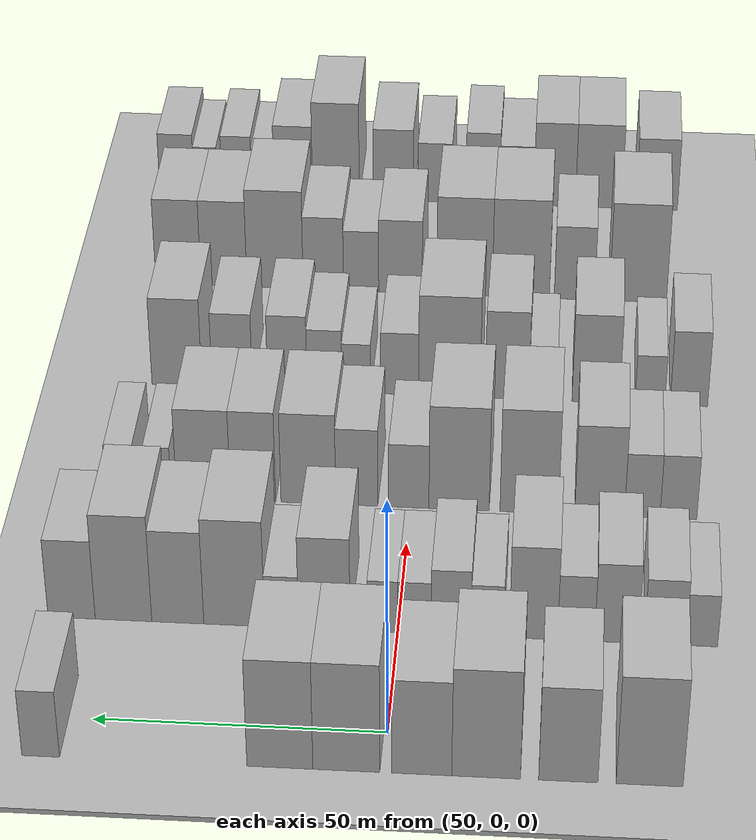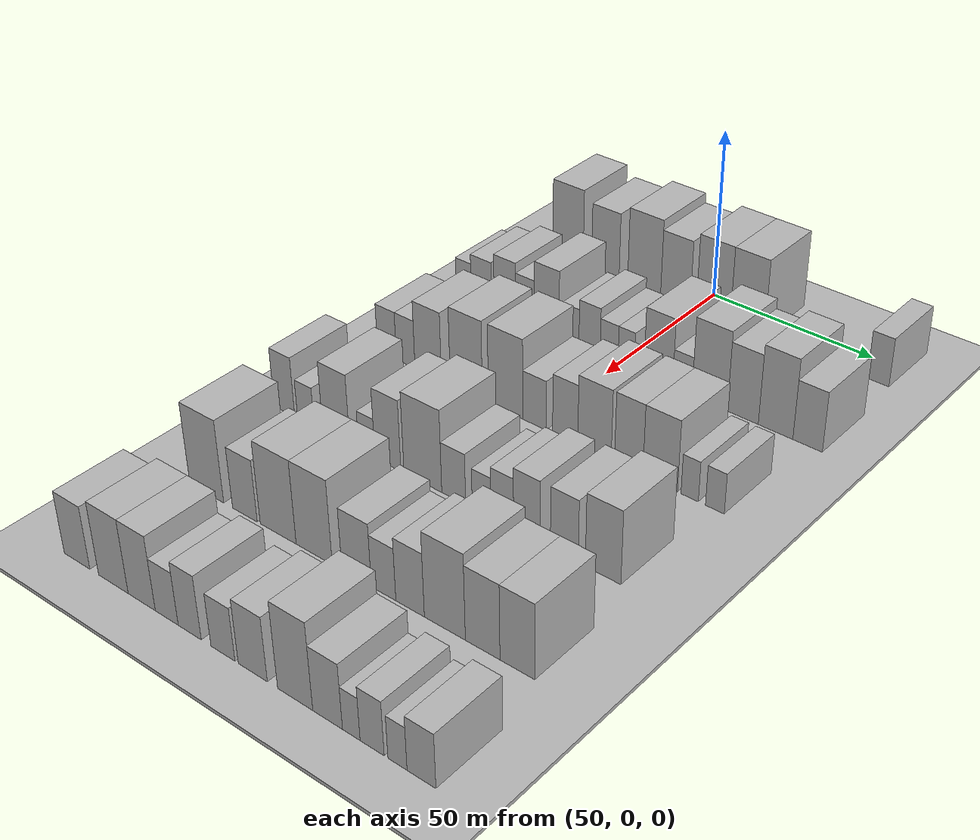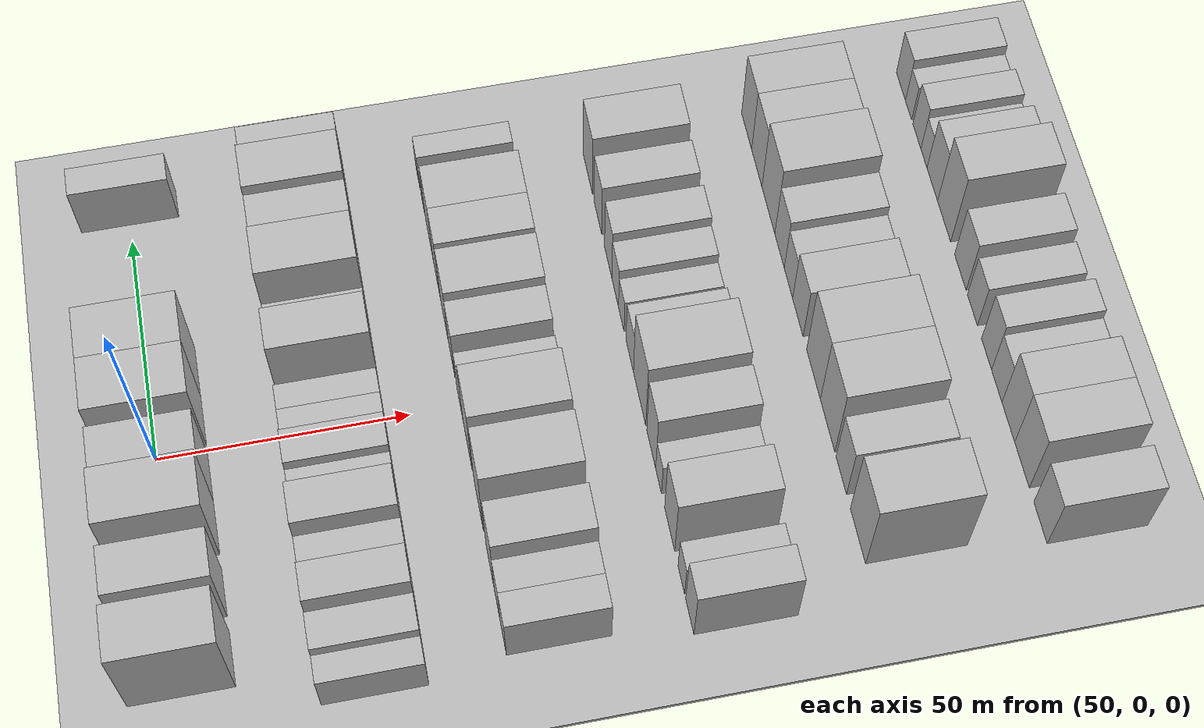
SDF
<sdf version="1.6">
 <world name="default">
  <include><name>ground_plane_1</name><uri>model://HANNAS_ground_plane</uri></include>
  <include>
   <name>ground_plane_2</name>
   <uri>model://HANNAS_ground_plane</uri>
   <pose>100 0 0  0 0 0</pose>
  </include>
  <model name="building_56">
   <static>1</static>
   <pose>50.0000 -43.8185 0 0.000000 0.000000 0.000000</pose>
   <link name="link">
    <pose>0 0 12.00 0 0 0</pose>
    <collision name="collision"><geometry><box><size>20.0000 10.9798 24.0000</size></box></geometry></collision>
    <visual name="visual">
     <cast_shadows>0</cast_shadows>
     <geometry><box><size>20.0000 10.9798 24.0000</size></box></geometry>
     <material>
      <script>
       <uri>model://HANNAS_wall/materials/scripts</uri>
       <uri>model://HANNAS_wall/materials/textures</uri>
       <name>vrc/HANNAS_wall</name>
      </script>
     </material>
    </visual>
   </link>
  </model>
  <model name="building_57">
   <static>1</static>
   <pose>50.0000 -30.4582 0 0.000000 0.000000 0.000000</pose>
   <link name="link">
    <pose>0 0 10.50 0 0 0</pose>
    <collision name="collision"><geometry><box><size>20.0000 9.7407 21.0000</size></box></geometry></collision>
    <visual name="visual">
     <cast_shadows>0</cast_shadows>
     <geometry><box><size>20.0000 9.7407 21.0000</size></box></geometry>
     <material>
      <script>
       <uri>model://HANNAS_wall/materials/scripts</uri>
       <uri>model://HANNAS_wall/materials/textures</uri>
       <name>vrc/HANNAS_wall</name>
      </script>
     </material>
    </visual>
   </link>
  </model>
  <model name="building_58">
   <static>1</static>
   <pose>50.0000 -16.9229 0 0.000000 0.000000 0.000000</pose>
   <link name="link">
    <pose>0 0 12.00 0 0 0</pose>
    <collision name="collision"><geometry><box><size>20.0000 11.3301 24.0000</size></box></geometry></collision>
    <visual name="visual">
     <cast_shadows>0</cast_shadows>
     <geometry><box><size>20.0000 11.3301 24.0000</size></box></geometry>
     <material>
      <script>
       <uri>model://HANNAS_wall/materials/scripts</uri>
       <uri>model://HANNAS_wall/materials/textures</uri>
       <name>vrc/HANNAS_wall</name>
      </script>
     </material>
    </visual>
   </link>
  </model>
  <model name="building_59">
   <static>1</static>
   <pose>50.0000 -6.3030 0 0.000000 0.000000 0.000000</pose>
   <link name="link">
    <pose>0 0 10.50 0 0 0</pose>
    <collision name="collision"><geometry><box><size>20.0000 9.9096 21.0000</size></box></geometry></collision>
    <visual name="visual">
     <cast_shadows>0</cast_shadows>
     <geometry><box><size>20.0000 9.9096 21.0000</size></box></geometry>
     <material>
      <script>
       <uri>model://HANNAS_wall/materials/scripts</uri>
       <uri>model://HANNAS_wall/materials/textures</uri>
       <name>vrc/HANNAS_wall</name>
      </script>
     </material>
    </visual>
   </link>
  </model>
  <model name="building_60">
   <static>1</static>
   <pose>50.0000 6.1983 0 0.000000 0.000000 0.000000</pose>
   <link name="link">
    <pose>0 0 12.00 0 0 0</pose>
    <collision name="collision"><geometry><box><size>20.0000 11.0931 24.0000</size></box></geometry></collision>
    <visual name="visual">
     <cast_shadows>0</cast_shadows>
     <geometry><box><size>20.0000 11.0931 24.0000</size></box></geometry>
     <material>
      <script>
       <uri>model://HANNAS_wall/materials/scripts</uri>
       <uri>model://HANNAS_wall/materials/textures</uri>
       <name>vrc/HANNAS_wall</name>
      </script>
     </material>
    </visual>
   </link>
  </model>
  <model name="building_61">
   <static>1</static>
   <pose>50.0000 17.2244 0 0.000000 0.000000 0.000000</pose>
   <link name="link">
    <pose>0 0 12.00 0 0 0</pose>
    <collision name="collision"><geometry><box><size>20.0000 10.9591 24.0000</size></box></geometry></collision>
    <visual name="visual">
     <cast_shadows>0</cast_shadows>
     <geometry><box><size>20.0000 10.9591 24.0000</size></box></geometry>
     <material>
      <script>
       <uri>model://HANNAS_wall/materials/scripts</uri>
       <uri>model://HANNAS_wall/materials/textures</uri>
       <name>vrc/HANNAS_wall</name>
      </script>
     </material>
    </visual>
   </link>
  </model>
  <model name="building_62">
   <static>1</static>
   <pose>50.0000 57.1753 0 0.000000 0.000000 0.000000</pose>
   <link name="link">
    <pose>0 0 7.50 0 0 0</pose>
    <collision name="collision"><geometry><box><size>20.0000 6.3143 15.0000</size></box></geometry></collision>
    <visual name="visual">
     <cast_shadows>0</cast_shadows>
     <geometry><box><size>20.0000 6.3143 15.0000</size></box></geometry>
     <material>
      <script>
       <uri>model://HANNAS_wall/materials/scripts</uri>
       <uri>model://HANNAS_wall/materials/textures</uri>
       <name>vrc/HANNAS_wall</name>
      </script>
     </material>
    </visual>
   </link>
  </model>
  <model name="building_176">
   <static>1</static>
   <pose>85.0000 -53.0691 0 0.000000 0.000000 0.000000</pose>
   <link name="link">
    <pose>0 0 6.00 0 0 0</pose>
    <collision name="collision"><geometry><box><size>20.0000 5.4670 12.0000</size></box></geometry></collision>
    <visual name="visual">
     <cast_shadows>0</cast_shadows>
     <geometry><box><size>20.0000 5.4670 12.0000</size></box></geometry>
     <material>
      <script>
       <uri>model://HANNAS_wall/materials/scripts</uri>
       <uri>model://HANNAS_wall/materials/textures</uri>
       <name>vrc/HANNAS_wall</name>
      </script>
     </material>
    </visual>
   </link>
  </model>
  <model name="building_177">
   <static>1</static>
   <pose>85.0000 -46.6960 0 0.000000 0.000000 0.000000</pose>
   <link name="link">
    <pose>0 0 7.50 0 0 0</pose>
    <collision name="collision"><geometry><box><size>20.0000 7.2791 15.0000</size></box></geometry></collision>
    <visual name="visual">
     <cast_shadows>0</cast_shadows>
     <geometry><box><size>20.0000 7.2791 15.0000</size></box></geometry>
     <material>
      <script>
       <uri>model://HANNAS_wall/materials/scripts</uri>
       <uri>model://HANNAS_wall/materials/textures</uri>
       <name>vrc/HANNAS_wall</name>
      </script>
     </material>
    </visual>
   </link>
  </model>
  <model name="building_178">
   <static>1</static>
   <pose>85.0000 -38.2350 0 0.000000 0.000000 0.000000</pose>
   <link name="link">
    <pose>0 0 9.00 0 0 0</pose>
    <collision name="collision"><geometry><box><size>20.0000 7.6429 18.0000</size></box></geometry></collision>
    <visual name="visual">
     <cast_shadows>0</cast_shadows>
     <geometry><box><size>20.0000 7.6429 18.0000</size></box></geometry>
     <material>
      <script>
       <uri>model://HANNAS_wall/materials/scripts</uri>
       <uri>model://HANNAS_wall/materials/textures</uri>
       <name>vrc/HANNAS_wall</name>
      </script>
     </material>
    </visual>
   </link>
  </model>
  <model name="building_179">
   <static>1</static>
   <pose>85.0000 -31.1884 0 0.000000 0.000000 0.000000</pose>
   <link name="link">
    <pose>0 0 7.50 0 0 0</pose>
    <collision name="collision"><geometry><box><size>20.0000 6.4503 15.0000</size></box></geometry></collision>
    <visual name="visual">
     <cast_shadows>0</cast_shadows>
     <geometry><box><size>20.0000 6.4503 15.0000</size></box></geometry>
     <material>
      <script>
       <uri>model://HANNAS_wall/materials/scripts</uri>
       <uri>model://HANNAS_wall/materials/textures</uri>
       <name>vrc/HANNAS_wall</name>
      </script>
     </material>
    </visual>
   </link>
  </model>
  <model name="building_180">
   <static>1</static>
   <pose>85.0000 -23.7538 0 0.000000 0.000000 0.000000</pose>
   <link name="link">
    <pose>0 0 10.50 0 0 0</pose>
    <collision name="collision"><geometry><box><size>20.0000 8.4188 21.0000</size></box></geometry></collision>
    <visual name="visual">
     <cast_shadows>0</cast_shadows>
     <geometry><box><size>20.0000 8.4188 21.0000</size></box></geometry>
     <material>
      <script>
       <uri>model://HANNAS_wall/materials/scripts</uri>
       <uri>model://HANNAS_wall/materials/textures</uri>
       <name>vrc/HANNAS_wall</name>
      </script>
     </material>
    </visual>
   </link>
  </model>
  <model name="building_181">
   <static>1</static>
   <pose>85.0000 -15.6903 0 0.000000 0.000000 0.000000</pose>
   <link name="link">
    <pose>0 0 6.00 0 0 0</pose>
    <collision name="collision"><geometry><box><size>20.0000 5.7083 12.0000</size></box></geometry></collision>
    <visual name="visual">
     <cast_shadows>0</cast_shadows>
     <geometry><box><size>20.0000 5.7083 12.0000</size></box></geometry>
     <material>
      <script>
       <uri>model://HANNAS_wall/materials/scripts</uri>
       <uri>model://HANNAS_wall/materials/textures</uri>
       <name>vrc/HANNAS_wall</name>
      </script>
     </material>
    </visual>
   </link>
  </model>
  <model name="building_182">
   <static>1</static>
   <pose>85.0000 -9.3246 0 0.000000 0.000000 0.000000</pose>
   <link name="link">
    <pose>0 0 7.50 0 0 0</pose>
    <collision name="collision"><geometry><box><size>20.0000 7.0229 15.0000</size></box></geometry></collision>
    <visual name="visual">
     <cast_shadows>0</cast_shadows>
     <geometry><box><size>20.0000 7.0229 15.0000</size></box></geometry>
     <material>
      <script>
       <uri>model://HANNAS_wall/materials/scripts</uri>
       <uri>model://HANNAS_wall/materials/textures</uri>
       <name>vrc/HANNAS_wall</name>
      </script>
     </material>
    </visual>
   </link>
  </model>
  <model name="building_183">
   <static>1</static>
   <pose>85.0000 -2.8880 0 0.000000 0.000000 0.000000</pose>
   <link name="link">
    <pose>0 0 6.00 0 0 0</pose>
    <collision name="collision"><geometry><box><size>20.0000 5.8504 12.0000</size></box></geometry></collision>
    <visual name="visual">
     <cast_shadows>0</cast_shadows>
     <geometry><box><size>20.0000 5.8504 12.0000</size></box></geometry>
     <material>
      <script>
       <uri>model://HANNAS_wall/materials/scripts</uri>
       <uri>model://HANNAS_wall/materials/textures</uri>
       <name>vrc/HANNAS_wall</name>
      </script>
     </material>
    </visual>
   </link>
  </model>
  <model name="building_184">
   <static>1</static>
   <pose>85.0000 2.7037 0 0.000000 0.000000 0.000000</pose>
   <link name="link">
    <pose>0 0 6.00 0 0 0</pose>
    <collision name="collision"><geometry><box><size>20.0000 5.3329 12.0000</size></box></geometry></collision>
    <visual name="visual">
     <cast_shadows>0</cast_shadows>
     <geometry><box><size>20.0000 5.3329 12.0000</size></box></geometry>
     <material>
      <script>
       <uri>model://HANNAS_wall/materials/scripts</uri>
       <uri>model://HANNAS_wall/materials/textures</uri>
       <name>vrc/HANNAS_wall</name>
      </script>
     </material>
    </visual>
   </link>
  </model>
  <model name="building_185">
   <static>1</static>
   <pose>85.0000 12.9105 0 0.000000 0.000000 0.000000</pose>
   <link name="link">
    <pose>0 0 10.50 0 0 0</pose>
    <collision name="collision"><geometry><box><size>20.0000 9.0807 21.0000</size></box></geometry></collision>
    <visual name="visual">
     <cast_shadows>0</cast_shadows>
     <geometry><box><size>20.0000 9.0807 21.0000</size></box></geometry>
     <material>
      <script>
       <uri>model://HANNAS_wall/materials/scripts</uri>
       <uri>model://HANNAS_wall/materials/textures</uri>
       <name>vrc/HANNAS_wall</name>
      </script>
     </material>
    </visual>
   </link>
  </model>
  <model name="building_186">
   <static>1</static>
   <pose>85.0000 20.4463 0 0.000000 0.000000 0.000000</pose>
   <link name="link">
    <pose>0 0 6.00 0 0 0</pose>
    <collision name="collision"><geometry><box><size>20.0000 5.9910 12.0000</size></box></geometry></collision>
    <visual name="visual">
     <cast_shadows>0</cast_shadows>
     <geometry><box><size>20.0000 5.9910 12.0000</size></box></geometry>
     <material>
      <script>
       <uri>model://HANNAS_wall/materials/scripts</uri>
       <uri>model://HANNAS_wall/materials/textures</uri>
       <name>vrc/HANNAS_wall</name>
      </script>
     </material>
    </visual>
   </link>
  </model>
  <model name="building_187">
   <static>1</static>
   <pose>85.0000 28.7972 0 0.000000 0.000000 0.000000</pose>
   <link name="link">
    <pose>0 0 12.00 0 0 0</pose>
    <collision name="collision"><geometry><box><size>20.0000 10.7109 24.0000</size></box></geometry></collision>
    <visual name="visual">
     <cast_shadows>0</cast_shadows>
     <geometry><box><size>20.0000 10.7109 24.0000</size></box></geometry>
     <material>
      <script>
       <uri>model://HANNAS_wall/materials/scripts</uri>
       <uri>model://HANNAS_wall/materials/textures</uri>
       <name>vrc/HANNAS_wall</name>
      </script>
     </material>
    </visual>
   </link>
  </model>
  <model name="building_188">
   <static>1</static>
   <pose>85.0000 38.7574 0 0.000000 0.000000 0.000000</pose>
   <link name="link">
    <pose>0 0 10.50 0 0 0</pose>
    <collision name="collision"><geometry><box><size>20.0000 9.2094 21.0000</size></box></geometry></collision>
    <visual name="visual">
     <cast_shadows>0</cast_shadows>
     <geometry><box><size>20.0000 9.2094 21.0000</size></box></geometry>
     <material>
      <script>
       <uri>model://HANNAS_wall/materials/scripts</uri>
       <uri>model://HANNAS_wall/materials/textures</uri>
       <name>vrc/HANNAS_wall</name>
      </script>
     </material>
    </visual>
   </link>
  </model>
  <model name="building_189">
   <static>1</static>
   <pose>85.0000 48.3788 0 0.000000 0.000000 0.000000</pose>
   <link name="link">
    <pose>0 0 12.00 0 0 0</pose>
    <collision name="collision"><geometry><box><size>20.0000 10.0334 24.0000</size></box></geometry></collision>
    <visual name="visual">
     <cast_shadows>0</cast_shadows>
     <geometry><box><size>20.0000 10.0334 24.0000</size></box></geometry>
     <material>
      <script>
       <uri>model://HANNAS_wall/materials/scripts</uri>
       <uri>model://HANNAS_wall/materials/textures</uri>
       <name>vrc/HANNAS_wall</name>
      </script>
     </material>
    </visual>
   </link>
  </model>
  <model name="building_190">
   <static>1</static>
   <pose>85.0000 57.5876 0 0.000000 0.000000 0.000000</pose>
   <link name="link">
    <pose>0 0 9.00 0 0 0</pose>
    <collision name="collision"><geometry><box><size>20.0000 8.3841 18.0000</size></box></geometry></collision>
    <visual name="visual">
     <cast_shadows>0</cast_shadows>
     <geometry><box><size>20.0000 8.3841 18.0000</size></box></geometry>
     <material>
      <script>
       <uri>model://HANNAS_wall/materials/scripts</uri>
       <uri>model://HANNAS_wall/materials/textures</uri>
       <name>vrc/HANNAS_wall</name>
      </script>
     </material>
    </visual>
   </link>
  </model>
  <model name="building_310">
   <static>1</static>
   <pose>120.0000 -49.4529 0 0.000000 0.000000 0.000000</pose>
   <link name="link">
    <pose>0 0 7.50 0 0 0</pose>
    <collision name="collision"><geometry><box><size>20.0000 6.7456 15.0000</size></box></geometry></collision>
    <visual name="visual">
     <cast_shadows>0</cast_shadows>
     <geometry><box><size>20.0000 6.7456 15.0000</size></box></geometry>
     <material>
      <script>
       <uri>model://HANNAS_wall/materials/scripts</uri>
       <uri>model://HANNAS_wall/materials/textures</uri>
       <name>vrc/HANNAS_wall</name>
      </script>
     </material>
    </visual>
   </link>
  </model>
  <model name="building_311">
   <static>1</static>
   <pose>120.0000 -42.8187 0 0.000000 0.000000 0.000000</pose>
   <link name="link">
    <pose>0 0 7.50 0 0 0</pose>
    <collision name="collision"><geometry><box><size>20.0000 6.5228 15.0000</size></box></geometry></collision>
    <visual name="visual">
     <cast_shadows>0</cast_shadows>
     <geometry><box><size>20.0000 6.5228 15.0000</size></box></geometry>
     <material>
      <script>
       <uri>model://HANNAS_wall/materials/scripts</uri>
       <uri>model://HANNAS_wall/materials/textures</uri>
       <name>vrc/HANNAS_wall</name>
      </script>
     </material>
    </visual>
   </link>
  </model>
  <model name="building_312">
   <static>1</static>
   <pose>120.0000 -34.9695 0 0.000000 0.000000 0.000000</pose>
   <link name="link">
    <pose>0 0 10.50 0 0 0</pose>
    <collision name="collision"><geometry><box><size>20.0000 9.1755 21.0000</size></box></geometry></collision>
    <visual name="visual">
     <cast_shadows>0</cast_shadows>
     <geometry><box><size>20.0000 9.1755 21.0000</size></box></geometry>
     <material>
      <script>
       <uri>model://HANNAS_wall/materials/scripts</uri>
       <uri>model://HANNAS_wall/materials/textures</uri>
       <name>vrc/HANNAS_wall</name>
      </script>
     </material>
    </visual>
   </link>
  </model>
  <model name="building_313">
   <static>1</static>
   <pose>120.0000 -21.9897 0 0.000000 0.000000 0.000000</pose>
   <link name="link">
    <pose>0 0 12.00 0 0 0</pose>
    <collision name="collision"><geometry><box><size>20.0000 10.7841 24.0000</size></box></geometry></collision>
    <visual name="visual">
     <cast_shadows>0</cast_shadows>
     <geometry><box><size>20.0000 10.7841 24.0000</size></box></geometry>
     <material>
      <script>
       <uri>model://HANNAS_wall/materials/scripts</uri>
       <uri>model://HANNAS_wall/materials/textures</uri>
       <name>vrc/HANNAS_wall</name>
      </script>
     </material>
    </visual>
   </link>
  </model>
  <model name="building_314">
   <static>1</static>
   <pose>120.0000 -9.0251 0 0.000000 0.000000 0.000000</pose>
   <link name="link">
    <pose>0 0 12.00 0 0 0</pose>
    <collision name="collision"><geometry><box><size>20.0000 11.1451 24.0000</size></box></geometry></collision>
    <visual name="visual">
     <cast_shadows>0</cast_shadows>
     <geometry><box><size>20.0000 11.1451 24.0000</size></box></geometry>
     <material>
      <script>
       <uri>model://HANNAS_wall/materials/scripts</uri>
       <uri>model://HANNAS_wall/materials/textures</uri>
       <name>vrc/HANNAS_wall</name>
      </script>
     </material>
    </visual>
   </link>
  </model>
  <model name="building_315">
   <static>1</static>
   <pose>120.0000 0.2911 0 0.000000 0.000000 0.000000</pose>
   <link name="link">
    <pose>0 0 7.50 0 0 0</pose>
    <collision name="collision"><geometry><box><size>20.0000 7.4872 15.0000</size></box></geometry></collision>
    <visual name="visual">
     <cast_shadows>0</cast_shadows>
     <geometry><box><size>20.0000 7.4872 15.0000</size></box></geometry>
     <material>
      <script>
       <uri>model://HANNAS_wall/materials/scripts</uri>
       <uri>model://HANNAS_wall/materials/textures</uri>
       <name>vrc/HANNAS_wall</name>
      </script>
     </material>
    </visual>
   </link>
  </model>
  <model name="building_316">
   <static>1</static>
   <pose>120.0000 9.9441 0 0.000000 0.000000 0.000000</pose>
   <link name="link">
    <pose>0 0 9.00 0 0 0</pose>
    <collision name="collision"><geometry><box><size>20.0000 7.8189 18.0000</size></box></geometry></collision>
    <visual name="visual">
     <cast_shadows>0</cast_shadows>
     <geometry><box><size>20.0000 7.8189 18.0000</size></box></geometry>
     <material>
      <script>
       <uri>model://HANNAS_wall/materials/scripts</uri>
       <uri>model://HANNAS_wall/materials/textures</uri>
       <name>vrc/HANNAS_wall</name>
      </script>
     </material>
    </visual>
   </link>
  </model>
  <model name="building_317">
   <static>1</static>
   <pose>120.0000 18.9361 0 0.000000 0.000000 0.000000</pose>
   <link name="link">
    <pose>0 0 10.50 0 0 0</pose>
    <collision name="collision"><geometry><box><size>20.0000 10.1650 21.0000</size></box></geometry></collision>
    <visual name="visual">
     <cast_shadows>0</cast_shadows>
     <geometry><box><size>20.0000 10.1650 21.0000</size></box></geometry>
     <material>
      <script>
       <uri>model://HANNAS_wall/materials/scripts</uri>
       <uri>model://HANNAS_wall/materials/textures</uri>
       <name>vrc/HANNAS_wall</name>
      </script>
     </material>
    </visual>
   </link>
  </model>
  <model name="building_318">
   <static>1</static>
   <pose>120.0000 29.2321 0 0.000000 0.000000 0.000000</pose>
   <link name="link">
    <pose>0 0 10.50 0 0 0</pose>
    <collision name="collision"><geometry><box><size>20.0000 8.4270 21.0000</size></box></geometry></collision>
    <visual name="visual">
     <cast_shadows>0</cast_shadows>
     <geometry><box><size>20.0000 8.4270 21.0000</size></box></geometry>
     <material>
      <script>
       <uri>model://HANNAS_wall/materials/scripts</uri>
       <uri>model://HANNAS_wall/materials/textures</uri>
       <name>vrc/HANNAS_wall</name>
      </script>
     </material>
    </visual>
   </link>
  </model>
  <model name="building_319">
   <static>1</static>
   <pose>120.0000 38.4697 0 0.000000 0.000000 0.000000</pose>
   <link name="link">
    <pose>0 0 10.50 0 0 0</pose>
    <collision name="collision"><geometry><box><size>20.0000 10.0481 21.0000</size></box></geometry></collision>
    <visual name="visual">
     <cast_shadows>0</cast_shadows>
     <geometry><box><size>20.0000 10.0481 21.0000</size></box></geometry>
     <material>
      <script>
       <uri>model://HANNAS_wall/materials/scripts</uri>
       <uri>model://HANNAS_wall/materials/textures</uri>
       <name>vrc/HANNAS_wall</name>
      </script>
     </material>
    </visual>
   </link>
  </model>
  <model name="building_320">
   <static>1</static>
   <pose>120.0000 46.9573 0 0.000000 0.000000 0.000000</pose>
   <link name="link">
    <pose>0 0 6.00 0 0 0</pose>
    <collision name="collision"><geometry><box><size>20.0000 4.9272 12.0000</size></box></geometry></collision>
    <visual name="visual">
     <cast_shadows>0</cast_shadows>
     <geometry><box><size>20.0000 4.9272 12.0000</size></box></geometry>
     <material>
      <script>
       <uri>model://HANNAS_wall/materials/scripts</uri>
       <uri>model://HANNAS_wall/materials/textures</uri>
       <name>vrc/HANNAS_wall</name>
      </script>
     </material>
    </visual>
   </link>
  </model>
  <model name="building_321">
   <static>1</static>
   <pose>120.0000 54.0471 0 0.000000 0.000000 0.000000</pose>
   <link name="link">
    <pose>0 0 6.00 0 0 0</pose>
    <collision name="collision"><geometry><box><size>20.0000 5.2524 12.0000</size></box></geometry></collision>
    <visual name="visual">
     <cast_shadows>0</cast_shadows>
     <geometry><box><size>20.0000 5.2524 12.0000</size></box></geometry>
     <material>
      <script>
       <uri>model://HANNAS_wall/materials/scripts</uri>
       <uri>model://HANNAS_wall/materials/textures</uri>
       <name>vrc/HANNAS_wall</name>
      </script>
     </material>
    </visual>
   </link>
  </model>
  <model name="building_436">
   <static>1</static>
   <pose>155.0000 -51.9201 0 0.000000 0.000000 0.000000</pose>
   <link name="link">
    <pose>0 0 9.00 0 0 0</pose>
    <collision name="collision"><geometry><box><size>20.0000 7.2445 18.0000</size></box></geometry></collision>
    <visual name="visual">
     <cast_shadows>0</cast_shadows>
     <geometry><box><size>20.0000 7.2445 18.0000</size></box></geometry>
     <material>
      <script>
       <uri>model://HANNAS_wall/materials/scripts</uri>
       <uri>model://HANNAS_wall/materials/textures</uri>
       <name>vrc/HANNAS_wall</name>
      </script>
     </material>
    </visual>
   </link>
  </model>
  <model name="building_437">
   <static>1</static>
   <pose>155.0000 -44.3984 0 0.000000 0.000000 0.000000</pose>
   <link name="link">
    <pose>0 0 6.00 0 0 0</pose>
    <collision name="collision"><geometry><box><size>20.0000 5.7989 12.0000</size></box></geometry></collision>
    <visual name="visual">
     <cast_shadows>0</cast_shadows>
     <geometry><box><size>20.0000 5.7989 12.0000</size></box></geometry>
     <material>
      <script>
       <uri>model://HANNAS_wall/materials/scripts</uri>
       <uri>model://HANNAS_wall/materials/textures</uri>
       <name>vrc/HANNAS_wall</name>
      </script>
     </material>
    </visual>
   </link>
  </model>
  <model name="building_438">
   <static>1</static>
   <pose>155.0000 -33.8927 0 0.000000 0.000000 0.000000</pose>
   <link name="link">
    <pose>0 0 10.50 0 0 0</pose>
    <collision name="collision"><geometry><box><size>20.0000 9.2124 21.0000</size></box></geometry></collision>
    <visual name="visual">
     <cast_shadows>0</cast_shadows>
     <geometry><box><size>20.0000 9.2124 21.0000</size></box></geometry>
     <material>
      <script>
       <uri>model://HANNAS_wall/materials/scripts</uri>
       <uri>model://HANNAS_wall/materials/textures</uri>
       <name>vrc/HANNAS_wall</name>
      </script>
     </material>
    </visual>
   </link>
  </model>
  <model name="building_439">
   <static>1</static>
   <pose>155.0000 -23.5919 0 0.000000 0.000000 0.000000</pose>
   <link name="link">
    <pose>0 0 6.00 0 0 0</pose>
    <collision name="collision"><geometry><box><size>20.0000 5.3892 12.0000</size></box></geometry></collision>
    <visual name="visual">
     <cast_shadows>0</cast_shadows>
     <geometry><box><size>20.0000 5.3892 12.0000</size></box></geometry>
     <material>
      <script>
       <uri>model://HANNAS_wall/materials/scripts</uri>
       <uri>model://HANNAS_wall/materials/textures</uri>
       <name>vrc/HANNAS_wall</name>
      </script>
     </material>
    </visual>
   </link>
  </model>
  <model name="building_440">
   <static>1</static>
   <pose>155.0000 -16.6614 0 0.000000 0.000000 0.000000</pose>
   <link name="link">
    <pose>0 0 10.50 0 0 0</pose>
    <collision name="collision"><geometry><box><size>20.0000 8.4717 21.0000</size></box></geometry></collision>
    <visual name="visual">
     <cast_shadows>0</cast_shadows>
     <geometry><box><size>20.0000 8.4717 21.0000</size></box></geometry>
     <material>
      <script>
       <uri>model://HANNAS_wall/materials/scripts</uri>
       <uri>model://HANNAS_wall/materials/textures</uri>
       <name>vrc/HANNAS_wall</name>
      </script>
     </material>
    </visual>
   </link>
  </model>
  <model name="building_441">
   <static>1</static>
   <pose>155.0000 -5.4288 0 0.000000 0.000000 0.000000</pose>
   <link name="link">
    <pose>0 0 12.00 0 0 0</pose>
    <collision name="collision"><geometry><box><size>20.0000 11.9936 24.0000</size></box></geometry></collision>
    <visual name="visual">
     <cast_shadows>0</cast_shadows>
     <geometry><box><size>20.0000 11.9936 24.0000</size></box></geometry>
     <material>
      <script>
       <uri>model://HANNAS_wall/materials/scripts</uri>
       <uri>model://HANNAS_wall/materials/textures</uri>
       <name>vrc/HANNAS_wall</name>
      </script>
     </material>
    </visual>
   </link>
  </model>
  <model name="building_442">
   <static>1</static>
   <pose>155.0000 4.2767 0 0.000000 0.000000 0.000000</pose>
   <link name="link">
    <pose>0 0 7.50 0 0 0</pose>
    <collision name="collision"><geometry><box><size>20.0000 7.4174 15.0000</size></box></geometry></collision>
    <visual name="visual">
     <cast_shadows>0</cast_shadows>
     <geometry><box><size>20.0000 7.4174 15.0000</size></box></geometry>
     <material>
      <script>
       <uri>model://HANNAS_wall/materials/scripts</uri>
       <uri>model://HANNAS_wall/materials/textures</uri>
       <name>vrc/HANNAS_wall</name>
      </script>
     </material>
    </visual>
   </link>
  </model>
  <model name="building_443">
   <static>1</static>
   <pose>155.0000 12.7968 0 0.000000 0.000000 0.000000</pose>
   <link name="link">
    <pose>0 0 6.00 0 0 0</pose>
    <collision name="collision"><geometry><box><size>20.0000 5.6229 12.0000</size></box></geometry></collision>
    <visual name="visual">
     <cast_shadows>0</cast_shadows>
     <geometry><box><size>20.0000 5.6229 12.0000</size></box></geometry>
     <material>
      <script>
       <uri>model://HANNAS_wall/materials/scripts</uri>
       <uri>model://HANNAS_wall/materials/textures</uri>
       <name>vrc/HANNAS_wall</name>
      </script>
     </material>
    </visual>
   </link>
  </model>
  <model name="building_444">
   <static>1</static>
   <pose>155.0000 19.0161 0 0.000000 0.000000 0.000000</pose>
   <link name="link">
    <pose>0 0 7.50 0 0 0</pose>
    <collision name="collision"><geometry><box><size>20.0000 6.8156 15.0000</size></box></geometry></collision>
    <visual name="visual">
     <cast_shadows>0</cast_shadows>
     <geometry><box><size>20.0000 6.8156 15.0000</size></box></geometry>
     <material>
      <script>
       <uri>model://HANNAS_wall/materials/scripts</uri>
       <uri>model://HANNAS_wall/materials/textures</uri>
       <name>vrc/HANNAS_wall</name>
      </script>
     </material>
    </visual>
   </link>
  </model>
  <model name="building_445">
   <static>1</static>
   <pose>155.0000 26.2734 0 0.000000 0.000000 0.000000</pose>
   <link name="link">
    <pose>0 0 9.00 0 0 0</pose>
    <collision name="collision"><geometry><box><size>20.0000 7.6990 18.0000</size></box></geometry></collision>
    <visual name="visual">
     <cast_shadows>0</cast_shadows>
     <geometry><box><size>20.0000 7.6990 18.0000</size></box></geometry>
     <material>
      <script>
       <uri>model://HANNAS_wall/materials/scripts</uri>
       <uri>model://HANNAS_wall/materials/textures</uri>
       <name>vrc/HANNAS_wall</name>
      </script>
     </material>
    </visual>
   </link>
  </model>
  <model name="building_446">
   <static>1</static>
   <pose>155.0000 37.0886 0 0.000000 0.000000 0.000000</pose>
   <link name="link">
    <pose>0 0 9.00 0 0 0</pose>
    <collision name="collision"><geometry><box><size>20.0000 7.9316 18.0000</size></box></geometry></collision>
    <visual name="visual">
     <cast_shadows>0</cast_shadows>
     <geometry><box><size>20.0000 7.9316 18.0000</size></box></geometry>
     <material>
      <script>
       <uri>model://HANNAS_wall/materials/scripts</uri>
       <uri>model://HANNAS_wall/materials/textures</uri>
       <name>vrc/HANNAS_wall</name>
      </script>
     </material>
    </visual>
   </link>
  </model>
  <model name="building_447">
   <static>1</static>
   <pose>155.0000 47.9744 0 0.000000 0.000000 0.000000</pose>
   <link name="link">
    <pose>0 0 10.50 0 0 0</pose>
    <collision name="collision"><geometry><box><size>20.0000 9.8399 21.0000</size></box></geometry></collision>
    <visual name="visual">
     <cast_shadows>0</cast_shadows>
     <geometry><box><size>20.0000 9.8399 21.0000</size></box></geometry>
     <material>
      <script>
       <uri>model://HANNAS_wall/materials/scripts</uri>
       <uri>model://HANNAS_wall/materials/textures</uri>
       <name>vrc/HANNAS_wall</name>
      </script>
     </material>
    </visual>
   </link>
  </model>
  <model name="building_571">
   <static>1</static>
   <pose>190.0000 -42.1070 0 0.000000 0.000000 0.000000</pose>
   <link name="link">
    <pose>0 0 12.00 0 0 0</pose>
    <collision name="collision"><geometry><box><size>20.0000 11.6554 24.0000</size></box></geometry></collision>
    <visual name="visual">
     <cast_shadows>0</cast_shadows>
     <geometry><box><size>20.0000 11.6554 24.0000</size></box></geometry>
     <material>
      <script>
       <uri>model://HANNAS_wall/materials/scripts</uri>
       <uri>model://HANNAS_wall/materials/textures</uri>
       <name>vrc/HANNAS_wall</name>
      </script>
     </material>
    </visual>
   </link>
  </model>
  <model name="building_572">
   <static>1</static>
   <pose>190.0000 -29.1701 0 0.000000 0.000000 0.000000</pose>
   <link name="link">
    <pose>0 0 9.00 0 0 0</pose>
    <collision name="collision"><geometry><box><size>20.0000 8.2184 18.0000</size></box></geometry></collision>
    <visual name="visual">
     <cast_shadows>0</cast_shadows>
     <geometry><box><size>20.0000 8.2184 18.0000</size></box></geometry>
     <material>
      <script>
       <uri>model://HANNAS_wall/materials/scripts</uri>
       <uri>model://HANNAS_wall/materials/textures</uri>
       <name>vrc/HANNAS_wall</name>
      </script>
     </material>
    </visual>
   </link>
  </model>
  <model name="building_573">
   <static>1</static>
   <pose>190.0000 -18.2340 0 0.000000 0.000000 0.000000</pose>
   <link name="link">
    <pose>0 0 12.00 0 0 0</pose>
    <collision name="collision"><geometry><box><size>20.0000 11.6538 24.0000</size></box></geometry></collision>
    <visual name="visual">
     <cast_shadows>0</cast_shadows>
     <geometry><box><size>20.0000 11.6538 24.0000</size></box></geometry>
     <material>
      <script>
       <uri>model://HANNAS_wall/materials/scripts</uri>
       <uri>model://HANNAS_wall/materials/textures</uri>
       <name>vrc/HANNAS_wall</name>
      </script>
     </material>
    </visual>
   </link>
  </model>
  <model name="building_574">
   <static>1</static>
   <pose>190.0000 -6.7224 0 0.000000 0.000000 0.000000</pose>
   <link name="link">
    <pose>0 0 12.00 0 0 0</pose>
    <collision name="collision"><geometry><box><size>20.0000 11.3694 24.0000</size></box></geometry></collision>
    <visual name="visual">
     <cast_shadows>0</cast_shadows>
     <geometry><box><size>20.0000 11.3694 24.0000</size></box></geometry>
     <material>
      <script>
       <uri>model://HANNAS_wall/materials/scripts</uri>
       <uri>model://HANNAS_wall/materials/textures</uri>
       <name>vrc/HANNAS_wall</name>
      </script>
     </material>
    </visual>
   </link>
  </model>
  <model name="building_575">
   <static>1</static>
   <pose>190.0000 6.4315 0 0.000000 0.000000 0.000000</pose>
   <link name="link">
    <pose>0 0 9.00 0 0 0</pose>
    <collision name="collision"><geometry><box><size>20.0000 8.9382 18.0000</size></box></geometry></collision>
    <visual name="visual">
     <cast_shadows>0</cast_shadows>
     <geometry><box><size>20.0000 8.9382 18.0000</size></box></geometry>
     <material>
      <script>
       <uri>model://HANNAS_wall/materials/scripts</uri>
       <uri>model://HANNAS_wall/materials/textures</uri>
       <name>vrc/HANNAS_wall</name>
      </script>
     </material>
    </visual>
   </link>
  </model>
  <model name="building_576">
   <static>1</static>
   <pose>190.0000 14.5263 0 0.000000 0.000000 0.000000</pose>
   <link name="link">
    <pose>0 0 7.50 0 0 0</pose>
    <collision name="collision"><geometry><box><size>20.0000 7.2515 15.0000</size></box></geometry></collision>
    <visual name="visual">
     <cast_shadows>0</cast_shadows>
     <geometry><box><size>20.0000 7.2515 15.0000</size></box></geometry>
     <material>
      <script>
       <uri>model://HANNAS_wall/materials/scripts</uri>
       <uri>model://HANNAS_wall/materials/textures</uri>
       <name>vrc/HANNAS_wall</name>
      </script>
     </material>
    </visual>
   </link>
  </model>
  <model name="building_577">
   <static>1</static>
   <pose>190.0000 22.3029 0 0.000000 0.000000 0.000000</pose>
   <link name="link">
    <pose>0 0 9.00 0 0 0</pose>
    <collision name="collision"><geometry><box><size>20.0000 8.3016 18.0000</size></box></geometry></collision>
    <visual name="visual">
     <cast_shadows>0</cast_shadows>
     <geometry><box><size>20.0000 8.3016 18.0000</size></box></geometry>
     <material>
      <script>
       <uri>model://HANNAS_wall/materials/scripts</uri>
       <uri>model://HANNAS_wall/materials/textures</uri>
       <name>vrc/HANNAS_wall</name>
      </script>
     </material>
    </visual>
   </link>
  </model>
  <model name="building_578">
   <static>1</static>
   <pose>190.0000 32.2489 0 0.000000 0.000000 0.000000</pose>
   <link name="link">
    <pose>0 0 12.00 0 0 0</pose>
    <collision name="collision"><geometry><box><size>20.0000 11.5903 24.0000</size></box></geometry></collision>
    <visual name="visual">
     <cast_shadows>0</cast_shadows>
     <geometry><box><size>20.0000 11.5903 24.0000</size></box></geometry>
     <material>
      <script>
       <uri>model://HANNAS_wall/materials/scripts</uri>
       <uri>model://HANNAS_wall/materials/textures</uri>
       <name>vrc/HANNAS_wall</name>
      </script>
     </material>
    </visual>
   </link>
  </model>
  <model name="building_579">
   <static>1</static>
   <pose>190.0000 42.7977 0 0.000000 0.000000 0.000000</pose>
   <link name="link">
    <pose>0 0 10.50 0 0 0</pose>
    <collision name="collision"><geometry><box><size>20.0000 9.5073 21.0000</size></box></geometry></collision>
    <visual name="visual">
     <cast_shadows>0</cast_shadows>
     <geometry><box><size>20.0000 9.5073 21.0000</size></box></geometry>
     <material>
      <script>
       <uri>model://HANNAS_wall/materials/scripts</uri>
       <uri>model://HANNAS_wall/materials/textures</uri>
       <name>vrc/HANNAS_wall</name>
      </script>
     </material>
    </visual>
   </link>
  </model>
  <model name="building_580">
   <static>1</static>
   <pose>190.0000 52.2171 0 0.000000 0.000000 0.000000</pose>
   <link name="link">
    <pose>0 0 10.50 0 0 0</pose>
    <collision name="collision"><geometry><box><size>20.0000 9.3315 21.0000</size></box></geometry></collision>
    <visual name="visual">
     <cast_shadows>0</cast_shadows>
     <geometry><box><size>20.0000 9.3315 21.0000</size></box></geometry>
     <material>
      <script>
       <uri>model://HANNAS_wall/materials/scripts</uri>
       <uri>model://HANNAS_wall/materials/textures</uri>
       <name>vrc/HANNAS_wall</name>
      </script>
     </material>
    </visual>
   </link>
  </model>
  <model name="building_697">
   <static>1</static>
   <pose>225.0000 -46.1570 0 0.000000 0.000000 0.000000</pose>
   <link name="link">
    <pose>0 0 9.00 0 0 0</pose>
    <collision name="collision"><geometry><box><size>20.0000 8.8776 18.0000</size></box></geometry></collision>
    <visual name="visual">
     <cast_shadows>0</cast_shadows>
     <geometry><box><size>20.0000 8.8776 18.0000</size></box></geometry>
     <material>
      <script>
       <uri>model://HANNAS_wall/materials/scripts</uri>
       <uri>model://HANNAS_wall/materials/textures</uri>
       <name>vrc/HANNAS_wall</name>
      </script>
     </material>
    </visual>
   </link>
  </model>
  <model name="building_698">
   <static>1</static>
   <pose>225.0000 -33.7525 0 0.000000 0.000000 0.000000</pose>
   <link name="link">
    <pose>0 0 10.50 0 0 0</pose>
    <collision name="collision"><geometry><box><size>20.0000 9.9314 21.0000</size></box></geometry></collision>
    <visual name="visual">
     <cast_shadows>0</cast_shadows>
     <geometry><box><size>20.0000 9.9314 21.0000</size></box></geometry>
     <material>
      <script>
       <uri>model://HANNAS_wall/materials/scripts</uri>
       <uri>model://HANNAS_wall/materials/textures</uri>
       <name>vrc/HANNAS_wall</name>
      </script>
     </material>
    </visual>
   </link>
  </model>
  <model name="building_699">
   <static>1</static>
   <pose>225.0000 -24.3382 0 0.000000 0.000000 0.000000</pose>
   <link name="link">
    <pose>0 0 10.50 0 0 0</pose>
    <collision name="collision"><geometry><box><size>20.0000 8.8971 21.0000</size></box></geometry></collision>
    <visual name="visual">
     <cast_shadows>0</cast_shadows>
     <geometry><box><size>20.0000 8.8971 21.0000</size></box></geometry>
     <material>
      <script>
       <uri>model://HANNAS_wall/materials/scripts</uri>
       <uri>model://HANNAS_wall/materials/textures</uri>
       <name>vrc/HANNAS_wall</name>
      </script>
     </material>
    </visual>
   </link>
  </model>
  <model name="building_700">
   <static>1</static>
   <pose>225.0000 -16.2217 0 0.000000 0.000000 0.000000</pose>
   <link name="link">
    <pose>0 0 7.50 0 0 0</pose>
    <collision name="collision"><geometry><box><size>20.0000 7.3359 15.0000</size></box></geometry></collision>
    <visual name="visual">
     <cast_shadows>0</cast_shadows>
     <geometry><box><size>20.0000 7.3359 15.0000</size></box></geometry>
     <material>
      <script>
       <uri>model://HANNAS_wall/materials/scripts</uri>
       <uri>model://HANNAS_wall/materials/textures</uri>
       <name>vrc/HANNAS_wall</name>
      </script>
     </material>
    </visual>
   </link>
  </model>
  <model name="building_701">
   <static>1</static>
   <pose>225.0000 -8.9435 0 0.000000 0.000000 0.000000</pose>
   <link name="link">
    <pose>0 0 9.00 0 0 0</pose>
    <collision name="collision"><geometry><box><size>20.0000 7.2205 18.0000</size></box></geometry></collision>
    <visual name="visual">
     <cast_shadows>0</cast_shadows>
     <geometry><box><size>20.0000 7.2205 18.0000</size></box></geometry>
     <material>
      <script>
       <uri>model://HANNAS_wall/materials/scripts</uri>
       <uri>model://HANNAS_wall/materials/textures</uri>
       <name>vrc/HANNAS_wall</name>
      </script>
     </material>
    </visual>
   </link>
  </model>
  <model name="building_702">
   <static>1</static>
   <pose>225.0000 1.3291 0 0.000000 0.000000 0.000000</pose>
   <link name="link">
    <pose>0 0 7.50 0 0 0</pose>
    <collision name="collision"><geometry><box><size>20.0000 7.3247 15.0000</size></box></geometry></collision>
    <visual name="visual">
     <cast_shadows>0</cast_shadows>
     <geometry><box><size>20.0000 7.3247 15.0000</size></box></geometry>
     <material>
      <script>
       <uri>model://HANNAS_wall/materials/scripts</uri>
       <uri>model://HANNAS_wall/materials/textures</uri>
       <name>vrc/HANNAS_wall</name>
      </script>
     </material>
    </visual>
   </link>
  </model>
  <model name="building_703">
   <static>1</static>
   <pose>225.0000 10.3060 0 0.000000 0.000000 0.000000</pose>
   <link name="link">
    <pose>0 0 9.00 0 0 0</pose>
    <collision name="collision"><geometry><box><size>20.0000 8.6292 18.0000</size></box></geometry></collision>
    <visual name="visual">
     <cast_shadows>0</cast_shadows>
     <geometry><box><size>20.0000 8.6292 18.0000</size></box></geometry>
     <material>
      <script>
       <uri>model://HANNAS_wall/materials/scripts</uri>
       <uri>model://HANNAS_wall/materials/textures</uri>
       <name>vrc/HANNAS_wall</name>
      </script>
     </material>
    </visual>
   </link>
  </model>
  <model name="building_704">
   <static>1</static>
   <pose>225.0000 22.6606 0 0.000000 0.000000 0.000000</pose>
   <link name="link">
    <pose>0 0 12.00 0 0 0</pose>
    <collision name="collision"><geometry><box><size>20.0000 10.0798 24.0000</size></box></geometry></collision>
    <visual name="visual">
     <cast_shadows>0</cast_shadows>
     <geometry><box><size>20.0000 10.0798 24.0000</size></box></geometry>
     <material>
      <script>
       <uri>model://HANNAS_wall/materials/scripts</uri>
       <uri>model://HANNAS_wall/materials/textures</uri>
       <name>vrc/HANNAS_wall</name>
      </script>
     </material>
    </visual>
   </link>
  </model>
  <model name="building_705">
   <static>1</static>
   <pose>225.0000 31.8471 0 0.000000 0.000000 0.000000</pose>
   <link name="link">
    <pose>0 0 9.00 0 0 0</pose>
    <collision name="collision"><geometry><box><size>20.0000 8.2933 18.0000</size></box></geometry></collision>
    <visual name="visual">
     <cast_shadows>0</cast_shadows>
     <geometry><box><size>20.0000 8.2933 18.0000</size></box></geometry>
     <material>
      <script>
       <uri>model://HANNAS_wall/materials/scripts</uri>
       <uri>model://HANNAS_wall/materials/textures</uri>
       <name>vrc/HANNAS_wall</name>
      </script>
     </material>
    </visual>
   </link>
  </model>
  <model name="building_706">
   <static>1</static>
   <pose>225.0000 38.4040 0 0.000000 0.000000 0.000000</pose>
   <link name="link">
    <pose>0 0 6.00 0 0 0</pose>
    <collision name="collision"><geometry><box><size>20.0000 4.8205 12.0000</size></box></geometry></collision>
    <visual name="visual">
     <cast_shadows>0</cast_shadows>
     <geometry><box><size>20.0000 4.8205 12.0000</size></box></geometry>
     <material>
      <script>
       <uri>model://HANNAS_wall/materials/scripts</uri>
       <uri>model://HANNAS_wall/materials/textures</uri>
       <name>vrc/HANNAS_wall</name>
      </script>
     </material>
    </visual>
   </link>
  </model>
  <model name="building_707">
   <static>1</static>
   <pose>225.0000 44.0477 0 0.000000 0.000000 0.000000</pose>
   <link name="link">
    <pose>0 0 7.50 0 0 0</pose>
    <collision name="collision"><geometry><box><size>20.0000 6.4670 15.0000</size></box></geometry></collision>
    <visual name="visual">
     <cast_shadows>0</cast_shadows>
     <geometry><box><size>20.0000 6.4670 15.0000</size></box></geometry>
     <material>
      <script>
       <uri>model://HANNAS_wall/materials/scripts</uri>
       <uri>model://HANNAS_wall/materials/textures</uri>
       <name>vrc/HANNAS_wall</name>
      </script>
     </material>
    </visual>
   </link>
  </model>
  <model name="building_708">
   <static>1</static>
   <pose>225.0000 50.7958 0 0.000000 0.000000 0.000000</pose>
   <link name="link">
    <pose>0 0 6.00 0 0 0</pose>
    <collision name="collision"><geometry><box><size>20.0000 5.0290 12.0000</size></box></geometry></collision>
    <visual name="visual">
     <cast_shadows>0</cast_shadows>
     <geometry><box><size>20.0000 5.0290 12.0000</size></box></geometry>
     <material>
      <script>
       <uri>model://HANNAS_wall/materials/scripts</uri>
       <uri>model://HANNAS_wall/materials/textures</uri>
       <name>vrc/HANNAS_wall</name>
      </script>
     </material>
    </visual>
   </link>
  </model>
  <model name="building_709">
   <static>1</static>
   <pose>225.0000 57.0420 0 0.000000 0.000000 0.000000</pose>
   <link name="link">
    <pose>0 0 7.50 0 0 0</pose>
    <collision name="collision"><geometry><box><size>20.0000 7.4634 15.0000</size></box></geometry></collision>
    <visual name="visual">
     <cast_shadows>0</cast_shadows>
     <geometry><box><size>20.0000 7.4634 15.0000</size></box></geometry>
     <material>
      <script>
       <uri>model://HANNAS_wall/materials/scripts</uri>
       <uri>model://HANNAS_wall/materials/textures</uri>
       <name>vrc/HANNAS_wall</name>
      </script>
     </material>
    </visual>
   </link>
  </model>
 </world>
</sdf>
